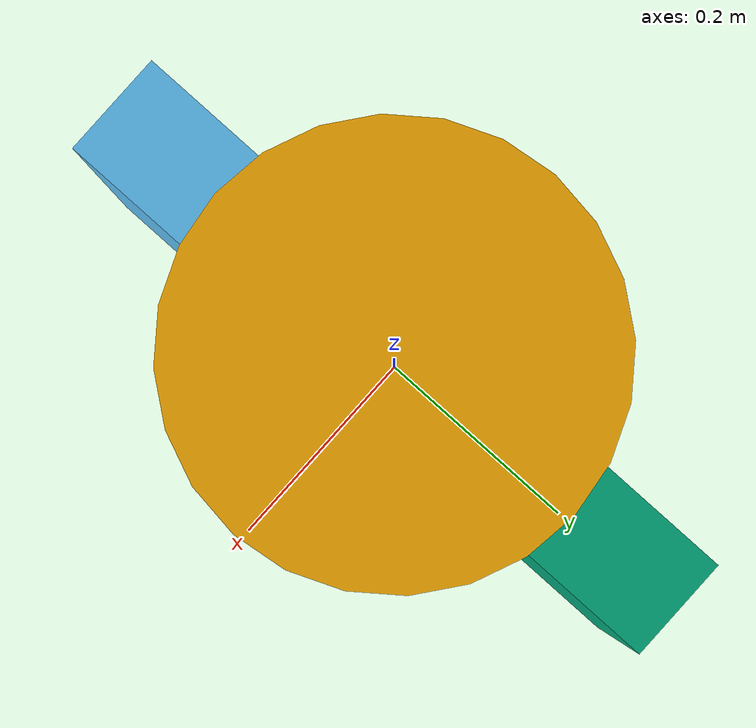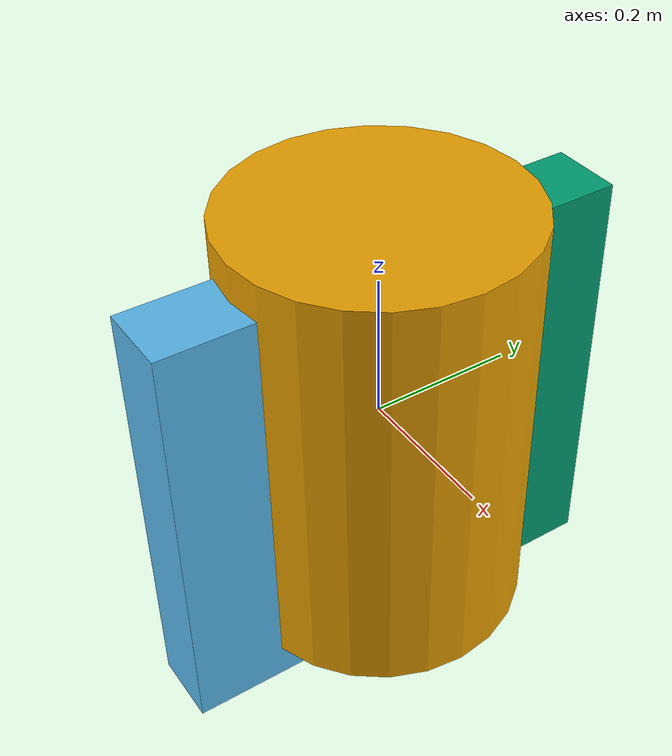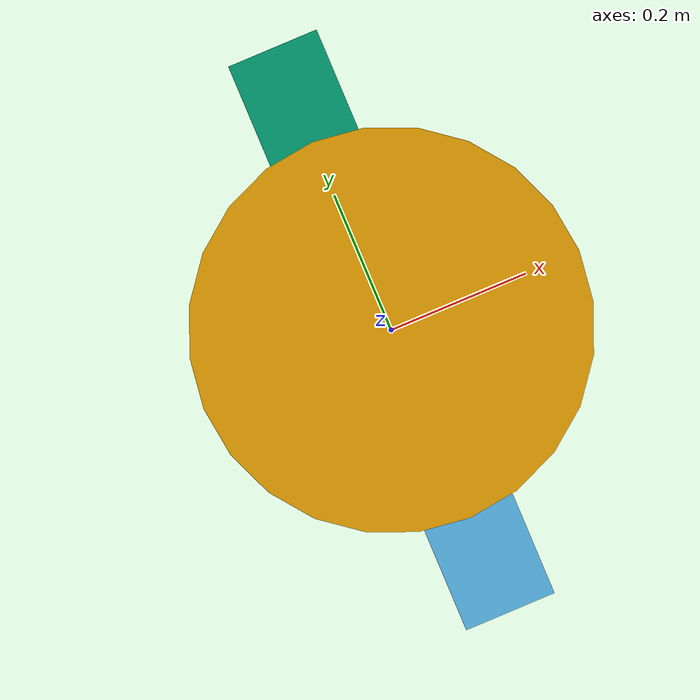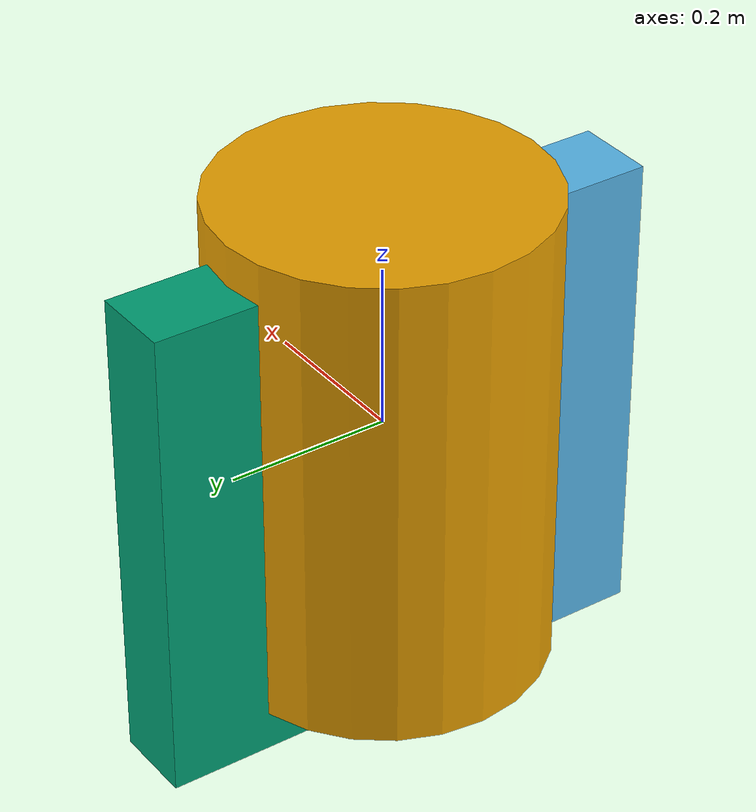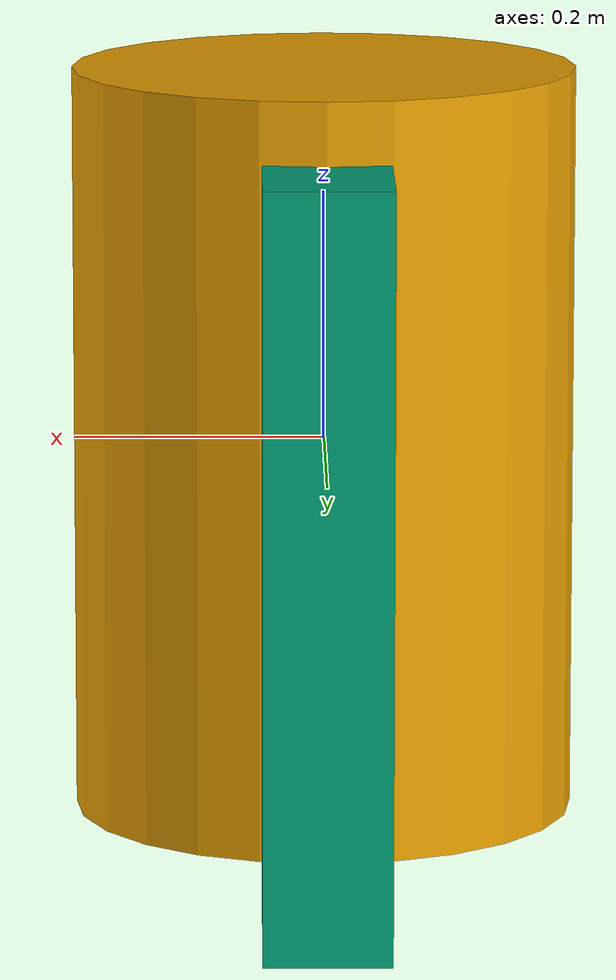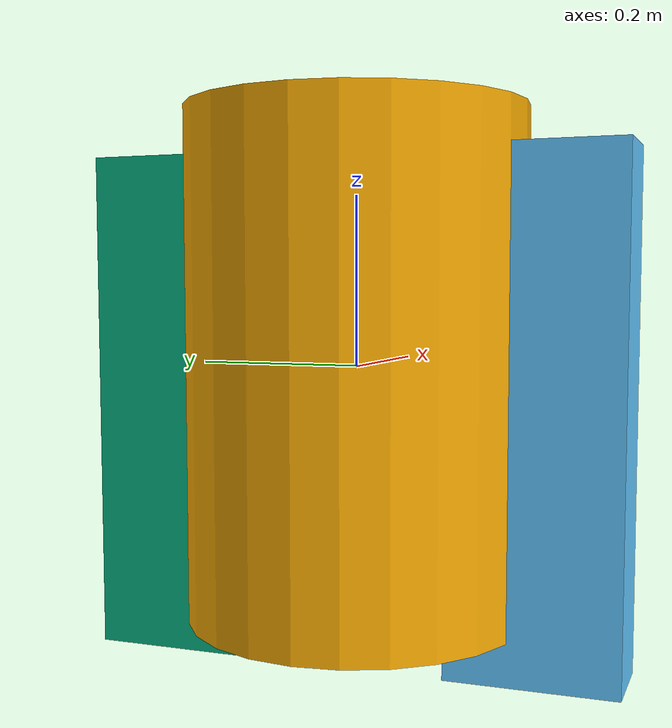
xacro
<?xml version="1.0"?>
<robot xmlns:xacro="http://ros.org/wiki/xacro" name="rover">
    <link name="base_link">
        <visual>
            <geometry>
                <cylinder length="0.6" radius="0.2"/>
            </geometry>
        </visual>
        <inertial>
            <mass value="10"/>
            <inertia ixx="1e-3" ixy="0.0" ixz="0.0" iyy="1e-3" iyz="0.0" izz="1e-3"/>
        </inertial>
        <collision>
            <geometry>
                <cylinder length="0.6" radius="0.2"/>
            </geometry>
        </collision>
    </link>

    <xacro:property name="bodywidth" value="0.2" />
    <xacro:property name="bodylen" value="0.6" />
    <xacro:property name="depth" value="0.1" />
    <xacro:property name="mass" value="0.5" />
    <link name="right_leg">
        <visual>
            <geometry>
                <box size="${bodylen} ${bodywidth} ${depth}"/>
            </geometry>
            <origin rpy="0 0 0" xyz="0.30 0 0"/>
        </visual>
        <inertial>
            <mass value="${mass}"/>
            <origin rpy="0 0 0" xyz="0.30 0 0"/>
            <inertia ixx="${mass*(depth**2 + bodywidth**2)/12}" ixy="0" ixz="0.0" iyy="${mass*(depth**2 + bodylen**2)/12}" iyz="0.0" izz="${mass*(bodywidth**2 + bodylen**2)/12}"/>
        </inertial>
        <collision>
            <geometry>
                <box size="${bodylen} ${bodywidth} ${depth}"/>
            </geometry>
            <origin rpy="0 0 0" xyz="0.30 0 0"/>
        </collision>
    </link>

    <joint name="base_to_right_leg" type="continuous">
        <parent link="base_link"/>
        <child link="right_leg"/>
        <axis xyz="1 0 0"/>
        <origin xyz="0 -0.22 0.25" rpy="0 1.57 0" />
    </joint>

    <link name="left_leg">
        <visual>
            <geometry>
                <box size="${bodylen} ${bodywidth} ${depth}"/>
            </geometry>
            <origin rpy="0 1.57 0" xyz="0 0 -0.30"/>
        </visual>
        <inertial>
            <mass value="${mass}"/>
            <!-- Rviz display bug - it is not able to take into account the rpy of the center of mass, only Gazebo works correctly. -->
            <origin rpy="0 1.57 0" xyz="0 0 -0.30"/>
            <inertia ixx="${mass*(depth**2 + bodywidth**2)/12}" ixy="0" ixz="0.0" iyy="${mass*(depth**2 + bodylen**2)/12}" iyz="0.0" izz="${mass*(bodywidth**2 + bodylen**2)/12}"/>
        </inertial>
        <collision>
            <geometry>
                <box size="${bodylen} ${bodywidth} ${depth}"/>
            </geometry>
            <origin rpy="0 1.57 0" xyz="0 0 -0.30"/>
        </collision>
    </link>

    <joint name="base_to_left_leg" type="continuous">
        <parent link="base_link"/>
        <child link="left_leg"/>
        <axis xyz="0 0 1"/>
        <origin xyz="0 0.22 0.25" rpy="0 0 0" />
    </joint>

</robot>
